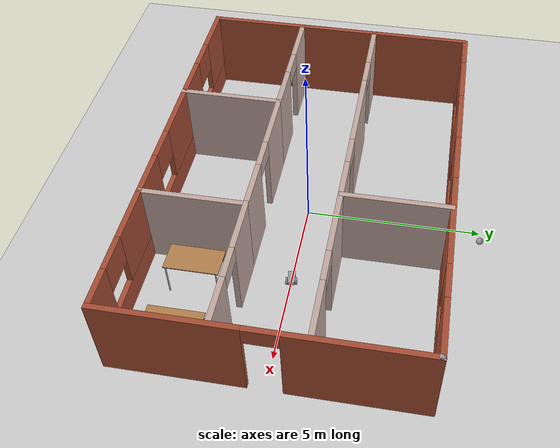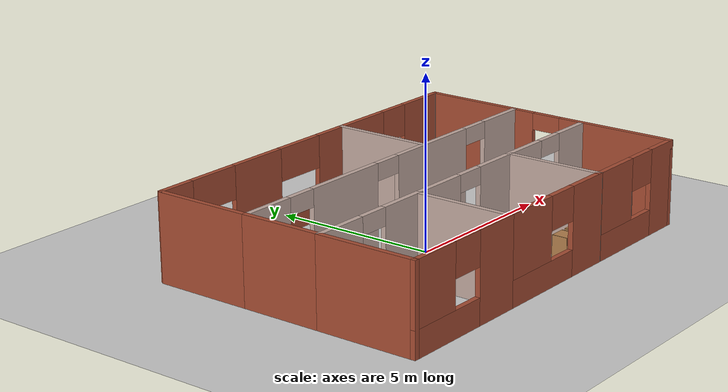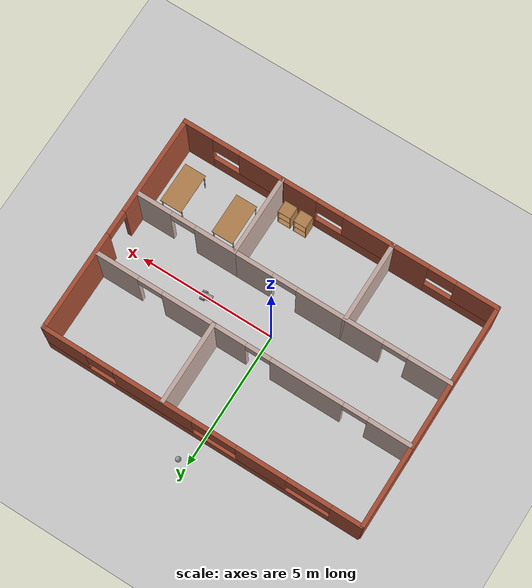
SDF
<sdf version="1.6">
 <world name="default">
  <model name="ground_plane">
   <static>1</static>
   <link name="link">
    <collision name="collision">
     <geometry><plane><normal>0 0 1</normal><size>100 100</size></plane></geometry>
     <surface><friction><ode><mu>100</mu><mu2>50</mu2></ode></friction></surface>
    </collision>
    <visual name="visual">
     <cast_shadows>0</cast_shadows>
     <geometry><plane><normal>0 0 1</normal><size>100 100</size></plane></geometry>
     <material>
      <script><uri>file://media/materials/scripts/gazebo.material</uri><name>Gazebo/Grey</name></script>
     </material>
    </visual>
   </link>
  </model>
  <model name="building1">
   <link name="Wall_0">
    <pose>5.83622 -0.00604 0 0 0 -1.5708</pose>
    <visual name="Wall_0_Visual_0">
     <pose>-2.28969 0 1.25 0 -0 0</pose>
     <geometry><box><size>3.67061 0.15 2.5</size></box></geometry>
     <material>
      <script><uri>file://media/materials/scripts/gazebo.material</uri><name>Gazebo/Bricks</name></script>
      <ambient>1 1 1 1</ambient>
     </material>
     <meta><layer>0</layer></meta>
    </visual>
    <collision name="Wall_0_Collision_0">
     <geometry><box><size>3.67061 0.15 2.5</size></box></geometry>
     <pose>-2.28969 0 1.25 0 -0 0</pose>
    </collision>
    <visual name="Wall_0_Visual_1">
     <pose>2.28531 0 1.25 0 -0 0</pose>
     <geometry><box><size>3.67939 0.15 2.5</size></box></geometry>
     <material>
      <script><uri>file://media/materials/scripts/gazebo.material</uri><name>Gazebo/Bricks</name></script>
      <ambient>1 1 1 1</ambient>
     </material>
     <meta><layer>0</layer></meta>
    </visual>
    <collision name="Wall_0_Collision_1">
     <geometry><box><size>3.67939 0.15 2.5</size></box></geometry>
     <pose>2.28531 0 1.25 0 -0 0</pose>
    </collision>
    <visual name="Wall_0_Visual_2">
     <pose>-0.004386 0 2.25 0 -0 0</pose>
     <geometry><box><size>0.9 0.15 0.5</size></box></geometry>
     <material>
      <script><uri>file://media/materials/scripts/gazebo.material</uri><name>Gazebo/Bricks</name></script>
      <ambient>1 1 1 1</ambient>
     </material>
     <meta><layer>0</layer></meta>
    </visual>
    <collision name="Wall_0_Collision_2">
     <geometry><box><size>0.9 0.15 0.5</size></box></geometry>
     <pose>-0.004386 0 2.25 0 -0 0</pose>
    </collision>
   </link>
   <link name="Wall_11">
    <pose>-3.91122 -4.05604 0 0 -0 3.14159</pose>
    <visual name="Wall_11_Visual_0">
     <pose>-1.29336 0 1.25 0 -0 0</pose>
     <geometry><box><size>1.41328 0.15 2.5</size></box></geometry>
     <material>
      <script><uri>file://media/materials/scripts/gazebo.material</uri><name>Gazebo/Bricks</name></script>
      <ambient>1 1 1 1</ambient>
     </material>
     <meta><layer>0</layer></meta>
    </visual>
    <collision name="Wall_11_Collision_0">
     <geometry><box><size>1.41328 0.15 2.5</size></box></geometry>
     <pose>-1.29336 0 1.25 0 -0 0</pose>
    </collision>
    <visual name="Wall_11_Visual_1">
     <pose>0.706639 0 0.375 0 -0 0</pose>
     <geometry><box><size>2.58672 0.15 0.75</size></box></geometry>
     <material>
      <script><uri>file://media/materials/scripts/gazebo.material</uri><name>Gazebo/Bricks</name></script>
      <ambient>1 1 1 1</ambient>
     </material>
     <meta><layer>0</layer></meta>
    </visual>
    <collision name="Wall_11_Collision_1">
     <geometry><box><size>2.58672 0.15 0.75</size></box></geometry>
     <pose>0.706639 0 0.375 0 -0 0</pose>
    </collision>
    <visual name="Wall_11_Visual_2">
     <pose>1.20664 0 1.625 0 -0 0</pose>
     <geometry><box><size>1.58672 0.15 1.75</size></box></geometry>
     <material>
      <script><uri>file://media/materials/scripts/gazebo.material</uri><name>Gazebo/Bricks</name></script>
      <ambient>1 1 1 1</ambient>
     </material>
     <meta><layer>0</layer></meta>
    </visual>
    <collision name="Wall_11_Collision_2">
     <geometry><box><size>1.58672 0.15 1.75</size></box></geometry>
     <pose>1.20664 0 1.625 0 -0 0</pose>
    </collision>
    <visual name="Wall_11_Visual_3">
     <pose>-0.086722 0 2.025 0 -0 0</pose>
     <geometry><box><size>1 0.15 0.95</size></box></geometry>
     <material>
      <script><uri>file://media/materials/scripts/gazebo.material</uri><name>Gazebo/Bricks</name></script>
      <ambient>1 1 1 1</ambient>
     </material>
     <meta><layer>0</layer></meta>
    </visual>
    <collision name="Wall_11_Collision_3">
     <geometry><box><size>1 0.15 0.95</size></box></geometry>
     <pose>-0.086722 0 2.025 0 -0 0</pose>
    </collision>
   </link>
   <link name="Wall_12">
    <collision name="Wall_12_Collision">
     <geometry><box><size>3 0.15 2.5</size></box></geometry>
     <pose>0 0 1.25 0 -0 0</pose>
    </collision>
    <visual name="Wall_12_Visual">
     <pose>0 0 1.25 0 -0 0</pose>
     <geometry><box><size>3 0.15 2.5</size></box></geometry>
     <material>
      <script><uri>file://media/materials/scripts/gazebo.material</uri><name>Gazebo/Bricks</name></script>
      <ambient>1 1 1 1</ambient>
     </material>
     <meta><layer>0</layer></meta>
    </visual>
    <pose>-5.83622 -2.63104 0 0 -0 1.5708</pose>
   </link>
   <link name="Wall_13">
    <pose>-3.91122 -1.20604 0 0 -0 0</pose>
    <visual name="Wall_13_Visual_0">
     <pose>-1.18164 0 1.25 0 -0 0</pose>
     <geometry><box><size>1.63672 0.15 2.5</size></box></geometry>
     <material>
      <script><uri>file://media/materials/scripts/gazebo.material</uri><name>Gazebo/Grey</name></script>
      <ambient>0.760784 0.662745 0.627451 1</ambient>
     </material>
     <meta><layer>0</layer></meta>
    </visual>
    <collision name="Wall_13_Collision_0">
     <geometry><box><size>1.63672 0.15 2.5</size></box></geometry>
     <pose>-1.18164 0 1.25 0 -0 0</pose>
    </collision>
    <visual name="Wall_13_Visual_1">
     <pose>1.26836 0 1.25 0 -0 0</pose>
     <geometry><box><size>1.46328 0.15 2.5</size></box></geometry>
     <material>
      <script><uri>file://media/materials/scripts/gazebo.material</uri><name>Gazebo/Grey</name></script>
      <ambient>0.760784 0.662745 0.627451 1</ambient>
     </material>
     <meta><layer>0</layer></meta>
    </visual>
    <collision name="Wall_13_Collision_1">
     <geometry><box><size>1.46328 0.15 2.5</size></box></geometry>
     <pose>1.26836 0 1.25 0 -0 0</pose>
    </collision>
    <visual name="Wall_13_Visual_2">
     <pose>0.086722 0 2.25 0 -0 0</pose>
     <geometry><box><size>0.9 0.15 0.5</size></box></geometry>
     <material>
      <script><uri>file://media/materials/scripts/gazebo.material</uri><name>Gazebo/Grey</name></script>
      <ambient>0.760784 0.662745 0.627451 1</ambient>
     </material>
     <meta><layer>0</layer></meta>
    </visual>
    <collision name="Wall_13_Collision_2">
     <geometry><box><size>0.9 0.15 0.5</size></box></geometry>
     <pose>0.086722 0 2.25 0 -0 0</pose>
    </collision>
   </link>
   <link name="Wall_15">
    <collision name="Wall_15_Collision">
     <geometry><box><size>2.5 0.15 2.5</size></box></geometry>
     <pose>0 0 1.25 0 -0 0</pose>
    </collision>
    <visual name="Wall_15_Visual">
     <pose>0 0 1.25 0 -0 0</pose>
     <geometry><box><size>2.5 0.15 2.5</size></box></geometry>
     <material>
      <script><uri>file://media/materials/scripts/gazebo.material</uri><name>Gazebo/Bricks</name></script>
      <ambient>1 1 1 1</ambient>
     </material>
     <meta><layer>0</layer></meta>
    </visual>
    <pose>-5.83622 -0.03104 0 0 -0 1.5708</pose>
   </link>
   <link name="Wall_16">
    <pose>-0.036216 1.14396 0 0 -0 0</pose>
    <visual name="Wall_16_Visual_0">
     <pose>-5.04789 0 1.25 0 -0 0</pose>
     <geometry><box><size>1.65421 0.15 2.5</size></box></geometry>
     <material>
      <script><uri>file://media/materials/scripts/gazebo.material</uri><name>Gazebo/Grey</name></script>
      <ambient>0.760784 0.662745 0.627451 1</ambient>
     </material>
     <meta><layer>0</layer></meta>
    </visual>
    <collision name="Wall_16_Collision_0">
     <geometry><box><size>1.65421 0.15 2.5</size></box></geometry>
     <pose>-5.04789 0 1.25 0 -0 0</pose>
    </collision>
    <visual name="Wall_16_Visual_1">
     <pose>-1.99555 0 1.25 0 -0 0</pose>
     <geometry><box><size>2.65048 0.15 2.5</size></box></geometry>
     <material>
      <script><uri>file://media/materials/scripts/gazebo.material</uri><name>Gazebo/Grey</name></script>
      <ambient>0.760784 0.662745 0.627451 1</ambient>
     </material>
     <meta><layer>0</layer></meta>
    </visual>
    <collision name="Wall_16_Collision_1">
     <geometry><box><size>2.65048 0.15 2.5</size></box></geometry>
     <pose>-1.99555 0 1.25 0 -0 0</pose>
    </collision>
    <visual name="Wall_16_Visual_2">
     <pose>1.79105 0 1.25 0 -0 0</pose>
     <geometry><box><size>3.12271 0.15 2.5</size></box></geometry>
     <material>
      <script><uri>file://media/materials/scripts/gazebo.material</uri><name>Gazebo/Grey</name></script>
      <ambient>0.760784 0.662745 0.627451 1</ambient>
     </material>
     <meta><layer>0</layer></meta>
    </visual>
    <collision name="Wall_16_Collision_2">
     <geometry><box><size>3.12271 0.15 2.5</size></box></geometry>
     <pose>1.79105 0 1.25 0 -0 0</pose>
    </collision>
    <visual name="Wall_16_Visual_3">
     <pose>5.0637 0 1.25 0 -0 0</pose>
     <geometry><box><size>1.62259 0.15 2.5</size></box></geometry>
     <material>
      <script><uri>file://media/materials/scripts/gazebo.material</uri><name>Gazebo/Grey</name></script>
      <ambient>0.760784 0.662745 0.627451 1</ambient>
     </material>
     <meta><layer>0</layer></meta>
    </visual>
    <collision name="Wall_16_Collision_3">
     <geometry><box><size>1.62259 0.15 2.5</size></box></geometry>
     <pose>5.0637 0 1.25 0 -0 0</pose>
    </collision>
    <visual name="Wall_16_Visual_4">
     <pose>-3.77079 0 2.25 0 -0 0</pose>
     <geometry><box><size>0.9 0.15 0.5</size></box></geometry>
     <material>
      <script><uri>file://media/materials/scripts/gazebo.material</uri><name>Gazebo/Grey</name></script>
      <ambient>0.760784 0.662745 0.627451 1</ambient>
     </material>
     <meta><layer>0</layer></meta>
    </visual>
    <collision name="Wall_16_Collision_4">
     <geometry><box><size>0.9 0.15 0.5</size></box></geometry>
     <pose>-3.77079 0 2.25 0 -0 0</pose>
    </collision>
    <visual name="Wall_16_Visual_5">
     <pose>-0.220305 0 2.25 0 -0 0</pose>
     <geometry><box><size>0.9 0.15 0.5</size></box></geometry>
     <material>
      <script><uri>file://media/materials/scripts/gazebo.material</uri><name>Gazebo/Grey</name></script>
      <ambient>0.760784 0.662745 0.627451 1</ambient>
     </material>
     <meta><layer>0</layer></meta>
    </visual>
    <collision name="Wall_16_Collision_5">
     <geometry><box><size>0.9 0.15 0.5</size></box></geometry>
     <pose>-0.220305 0 2.25 0 -0 0</pose>
    </collision>
    <visual name="Wall_16_Visual_6">
     <pose>3.80241 0 2.25 0 -0 0</pose>
     <geometry><box><size>0.9 0.15 0.5</size></box></geometry>
     <material>
      <script><uri>file://media/materials/scripts/gazebo.material</uri><name>Gazebo/Grey</name></script>
      <ambient>0.760784 0.662745 0.627451 1</ambient>
     </material>
     <meta><layer>0</layer></meta>
    </visual>
    <collision name="Wall_16_Collision_6">
     <geometry><box><size>0.9 0.15 0.5</size></box></geometry>
     <pose>3.80241 0 2.25 0 -0 0</pose>
    </collision>
   </link>
   <link name="Wall_22">
    <collision name="Wall_22_Collision">
     <geometry><box><size>3 0.15 2.5</size></box></geometry>
     <pose>0 0 1.25 0 -0 0</pose>
    </collision>
    <visual name="Wall_22_Visual">
     <pose>0 0 1.25 0 -0 0</pose>
     <geometry><box><size>3 0.15 2.5</size></box></geometry>
     <material>
      <script><uri>file://media/materials/scripts/gazebo.material</uri><name>Gazebo/Bricks</name></script>
      <ambient>1 1 1 1</ambient>
     </material>
     <meta><layer>0</layer></meta>
    </visual>
    <pose>-5.83622 2.56896 0 0 -0 1.5708</pose>
   </link>
   <link name="Wall_24">
    <collision name="Wall_24_Collision">
     <geometry><box><size>0.15 0.15 2.5</size></box></geometry>
     <pose>0 0 1.25 0 -0 0</pose>
    </collision>
    <visual name="Wall_24_Visual">
     <pose>0 0 1.25 0 -0 0</pose>
     <geometry><box><size>0.15 0.15 2.5</size></box></geometry>
     <material>
      <script><uri>file://media/materials/scripts/gazebo.material</uri><name>Gazebo/Grey</name></script>
      <ambient>1 1 1 1</ambient>
     </material>
     <meta><layer>0</layer></meta>
    </visual>
    <pose>5.83622 4.04396 0 0 -0 0</pose>
   </link>
   <link name="Wall_28">
    <pose>-0.000871 4.05604 0 0 -0 0</pose>
    <visual name="Wall_28_Visual_0">
     <pose>-5.30178 0 1.25 0 -0 0</pose>
     <geometry><box><size>1.14644 0.15 2.5</size></box></geometry>
     <material>
      <script><uri>file://media/materials/scripts/gazebo.material</uri><name>Gazebo/Bricks</name></script>
      <ambient>1 1 1 1</ambient>
     </material>
     <meta><layer>0</layer></meta>
    </visual>
    <collision name="Wall_28_Collision_0">
     <geometry><box><size>1.14644 0.15 2.5</size></box></geometry>
     <pose>-5.30178 0 1.25 0 -0 0</pose>
    </collision>
    <visual name="Wall_28_Visual_1">
     <pose>0.573218 0 0.375 0 -0 0</pose>
     <geometry><box><size>10.6036 0.15 0.75</size></box></geometry>
     <material>
      <script><uri>file://media/materials/scripts/gazebo.material</uri><name>Gazebo/Bricks</name></script>
      <ambient>1 1 1 1</ambient>
     </material>
     <meta><layer>0</layer></meta>
    </visual>
    <collision name="Wall_28_Collision_1">
     <geometry><box><size>10.6036 0.15 0.75</size></box></geometry>
     <pose>0.573218 0 0.375 0 -0 0</pose>
    </collision>
    <visual name="Wall_28_Visual_2">
     <pose>-2.20579 0 1.625 0 -0 0</pose>
     <geometry><box><size>1.84554 0.15 1.75</size></box></geometry>
     <material>
      <script><uri>file://media/materials/scripts/gazebo.material</uri><name>Gazebo/Bricks</name></script>
      <ambient>1 1 1 1</ambient>
     </material>
     <meta><layer>0</layer></meta>
    </visual>
    <collision name="Wall_28_Collision_2">
     <geometry><box><size>1.84554 0.15 1.75</size></box></geometry>
     <pose>-2.20579 0 1.625 0 -0 0</pose>
    </collision>
    <visual name="Wall_28_Visual_3">
     <pose>1.77453 0 1.625 0 -0 0</pose>
     <geometry><box><size>2.91511 0.15 1.75</size></box></geometry>
     <material>
      <script><uri>file://media/materials/scripts/gazebo.material</uri><name>Gazebo/Bricks</name></script>
      <ambient>1 1 1 1</ambient>
     </material>
     <meta><layer>0</layer></meta>
    </visual>
    <collision name="Wall_28_Collision_3">
     <geometry><box><size>2.91511 0.15 1.75</size></box></geometry>
     <pose>1.77453 0 1.625 0 -0 0</pose>
    </collision>
    <visual name="Wall_28_Visual_4">
     <pose>5.05354 0 1.625 0 -0 0</pose>
     <geometry><box><size>1.64292 0.15 1.75</size></box></geometry>
     <material>
      <script><uri>file://media/materials/scripts/gazebo.material</uri><name>Gazebo/Bricks</name></script>
      <ambient>1 1 1 1</ambient>
     </material>
     <meta><layer>0</layer></meta>
    </visual>
    <collision name="Wall_28_Collision_4">
     <geometry><box><size>1.64292 0.15 1.75</size></box></geometry>
     <pose>5.05354 0 1.625 0 -0 0</pose>
    </collision>
    <visual name="Wall_28_Visual_5">
     <pose>-3.92856 0 2.025 0 -0 0</pose>
     <geometry><box><size>1.6 0.15 0.95</size></box></geometry>
     <material>
      <script><uri>file://media/materials/scripts/gazebo.material</uri><name>Gazebo/Bricks</name></script>
      <ambient>1 1 1 1</ambient>
     </material>
     <meta><layer>0</layer></meta>
    </visual>
    <collision name="Wall_28_Collision_5">
     <geometry><box><size>1.6 0.15 0.95</size></box></geometry>
     <pose>-3.92856 0 2.025 0 -0 0</pose>
    </collision>
    <visual name="Wall_28_Visual_6">
     <pose>-0.483021 0 2.025 0 -0 0</pose>
     <geometry><box><size>1.6 0.15 0.95</size></box></geometry>
     <material>
      <script><uri>file://media/materials/scripts/gazebo.material</uri><name>Gazebo/Bricks</name></script>
      <ambient>1 1 1 1</ambient>
     </material>
     <meta><layer>0</layer></meta>
    </visual>
    <collision name="Wall_28_Collision_6">
     <geometry><box><size>1.6 0.15 0.95</size></box></geometry>
     <pose>-0.483021 0 2.025 0 -0 0</pose>
    </collision>
    <visual name="Wall_28_Visual_7">
     <pose>3.73208 0 2.025 0 -0 0</pose>
     <geometry><box><size>1 0.15 0.95</size></box></geometry>
     <material>
      <script><uri>file://media/materials/scripts/gazebo.material</uri><name>Gazebo/Bricks</name></script>
      <ambient>1 1 1 1</ambient>
     </material>
     <meta><layer>0</layer></meta>
    </visual>
    <collision name="Wall_28_Collision_7">
     <geometry><box><size>1 0.15 0.95</size></box></geometry>
     <pose>3.73208 0 2.025 0 -0 0</pose>
    </collision>
   </link>
   <link name="Wall_3">
    <pose>3.97243 -4.05604 0 0 -0 3.14159</pose>
    <visual name="Wall_3_Visual_0">
     <pose>-1.35239 0 1.25 0 -0 0</pose>
     <geometry><box><size>1.13781 0.15 2.5</size></box></geometry>
     <material>
      <script><uri>file://media/materials/scripts/gazebo.material</uri><name>Gazebo/Bricks</name></script>
      <ambient>1 1 1 1</ambient>
     </material>
     <meta><layer>0</layer></meta>
    </visual>
    <collision name="Wall_3_Collision_0">
     <geometry><box><size>1.13781 0.15 2.5</size></box></geometry>
     <pose>-1.35239 0 1.25 0 -0 0</pose>
    </collision>
    <visual name="Wall_3_Visual_1">
     <pose>0.568905 0 0.375 0 -0 0</pose>
     <geometry><box><size>2.70478 0.15 0.75</size></box></geometry>
     <material>
      <script><uri>file://media/materials/scripts/gazebo.material</uri><name>Gazebo/Bricks</name></script>
      <ambient>1 1 1 1</ambient>
     </material>
     <meta><layer>0</layer></meta>
    </visual>
    <collision name="Wall_3_Collision_1">
     <geometry><box><size>2.70478 0.15 0.75</size></box></geometry>
     <pose>0.568905 0 0.375 0 -0 0</pose>
    </collision>
    <visual name="Wall_3_Visual_2">
     <pose>1.0689 0 1.625 0 -0 0</pose>
     <geometry><box><size>1.70478 0.15 1.75</size></box></geometry>
     <material>
      <script><uri>file://media/materials/scripts/gazebo.material</uri><name>Gazebo/Bricks</name></script>
      <ambient>1 1 1 1</ambient>
     </material>
     <meta><layer>0</layer></meta>
    </visual>
    <collision name="Wall_3_Collision_2">
     <geometry><box><size>1.70478 0.15 1.75</size></box></geometry>
     <pose>1.0689 0 1.625 0 -0 0</pose>
    </collision>
    <visual name="Wall_3_Visual_3">
     <pose>-0.283484 0 2.025 0 -0 0</pose>
     <geometry><box><size>1 0.15 0.95</size></box></geometry>
     <material>
      <script><uri>file://media/materials/scripts/gazebo.material</uri><name>Gazebo/Bricks</name></script>
      <ambient>1 1 1 1</ambient>
     </material>
     <meta><layer>0</layer></meta>
    </visual>
    <collision name="Wall_3_Collision_3">
     <geometry><box><size>1 0.15 0.95</size></box></geometry>
     <pose>-0.283484 0 2.025 0 -0 0</pose>
    </collision>
   </link>
   <link name="Wall_30">
    <collision name="Wall_30_Collision">
     <geometry><box><size>3 0.15 2.5</size></box></geometry>
     <pose>0 0 1.25 0 -0 0</pose>
    </collision>
    <visual name="Wall_30_Visual">
     <pose>0 0 1.25 0 -0 0</pose>
     <geometry><box><size>3 0.15 2.5</size></box></geometry>
     <material>
      <script><uri>file://media/materials/scripts/gazebo.material</uri><name>Gazebo/Grey</name></script>
      <ambient>0.760784 0.662745 0.627451 1</ambient>
     </material>
     <meta><layer>0</layer></meta>
    </visual>
    <pose>1.40504 2.59518 0 0 -0 1.5708</pose>
   </link>
   <link name="Wall_4">
    <collision name="Wall_4_Collision">
     <geometry><box><size>3 0.15 2.5</size></box></geometry>
     <pose>0 0 1.25 0 -0 0</pose>
    </collision>
    <visual name="Wall_4_Visual">
     <pose>0 0 1.25 0 -0 0</pose>
     <geometry><box><size>3 0.15 2.5</size></box></geometry>
     <material>
      <script><uri>file://media/materials/scripts/gazebo.material</uri><name>Gazebo/Grey</name></script>
      <ambient>0.760784 0.662745 0.627451 1</ambient>
     </material>
     <meta><layer>0</layer></meta>
    </visual>
    <pose>2.14363 -2.63104 0 0 -0 1.5708</pose>
   </link>
   <link name="Wall_5">
    <pose>3.91996 -1.20604 0 0 -0 0</pose>
    <visual name="Wall_5_Visual_0">
     <pose>-1.08763 0 1.25 0 -0 0</pose>
     <geometry><box><size>1.56239 0.15 2.5</size></box></geometry>
     <material>
      <script><uri>file://media/materials/scripts/gazebo.material</uri><name>Gazebo/Grey</name></script>
      <ambient>0.760784 0.662745 0.627451 1</ambient>
     </material>
     <meta><layer>0</layer></meta>
    </visual>
    <collision name="Wall_5_Collision_0">
     <geometry><box><size>1.56239 0.15 2.5</size></box></geometry>
     <pose>-1.08763 0 1.25 0 -0 0</pose>
    </collision>
    <visual name="Wall_5_Visual_1">
     <pose>1.23119 0 1.25 0 -0 0</pose>
     <geometry><box><size>1.27526 0.15 2.5</size></box></geometry>
     <material>
      <script><uri>file://media/materials/scripts/gazebo.material</uri><name>Gazebo/Grey</name></script>
      <ambient>0.760784 0.662745 0.627451 1</ambient>
     </material>
     <meta><layer>0</layer></meta>
    </visual>
    <collision name="Wall_5_Collision_1">
     <geometry><box><size>1.27526 0.15 2.5</size></box></geometry>
     <pose>1.23119 0 1.25 0 -0 0</pose>
    </collision>
    <visual name="Wall_5_Visual_2">
     <pose>0.143564 0 2.25 0 -0 0</pose>
     <geometry><box><size>0.9 0.15 0.5</size></box></geometry>
     <material>
      <script><uri>file://media/materials/scripts/gazebo.material</uri><name>Gazebo/Grey</name></script>
      <ambient>0.760784 0.662745 0.627451 1</ambient>
     </material>
     <meta><layer>0</layer></meta>
    </visual>
    <collision name="Wall_5_Collision_2">
     <geometry><box><size>0.9 0.15 0.5</size></box></geometry>
     <pose>0.143564 0 2.25 0 -0 0</pose>
    </collision>
   </link>
   <link name="Wall_7">
    <pose>0.06996 -4.05604 0 0 -0 3.14159</pose>
    <visual name="Wall_7_Visual_0">
     <pose>-1.44093 0 1.25 0 -0 0</pose>
     <geometry><box><size>1.38048 0.15 2.5</size></box></geometry>
     <material>
      <script><uri>file://media/materials/scripts/gazebo.material</uri><name>Gazebo/Bricks</name></script>
      <ambient>1 1 1 1</ambient>
     </material>
     <meta><layer>0</layer></meta>
    </visual>
    <collision name="Wall_7_Collision_0">
     <geometry><box><size>1.38048 0.15 2.5</size></box></geometry>
     <pose>-1.44093 0 1.25 0 -0 0</pose>
    </collision>
    <visual name="Wall_7_Visual_1">
     <pose>0.690242 0 0.375 0 -0 0</pose>
     <geometry><box><size>2.88187 0.15 0.75</size></box></geometry>
     <material>
      <script><uri>file://media/materials/scripts/gazebo.material</uri><name>Gazebo/Bricks</name></script>
      <ambient>1 1 1 1</ambient>
     </material>
     <meta><layer>0</layer></meta>
    </visual>
    <collision name="Wall_7_Collision_1">
     <geometry><box><size>2.88187 0.15 0.75</size></box></geometry>
     <pose>0.690242 0 0.375 0 -0 0</pose>
    </collision>
    <visual name="Wall_7_Visual_2">
     <pose>1.19024 0 1.625 0 -0 0</pose>
     <geometry><box><size>1.88187 0.15 1.75</size></box></geometry>
     <material>
      <script><uri>file://media/materials/scripts/gazebo.material</uri><name>Gazebo/Bricks</name></script>
      <ambient>1 1 1 1</ambient>
     </material>
     <meta><layer>0</layer></meta>
    </visual>
    <collision name="Wall_7_Collision_2">
     <geometry><box><size>1.88187 0.15 1.75</size></box></geometry>
     <pose>1.19024 0 1.625 0 -0 0</pose>
    </collision>
    <visual name="Wall_7_Visual_3">
     <pose>-0.250691 0 2.025 0 -0 0</pose>
     <geometry><box><size>1 0.15 0.95</size></box></geometry>
     <material>
      <script><uri>file://media/materials/scripts/gazebo.material</uri><name>Gazebo/Bricks</name></script>
      <ambient>1 1 1 1</ambient>
     </material>
     <meta><layer>0</layer></meta>
    </visual>
    <collision name="Wall_7_Collision_3">
     <geometry><box><size>1 0.15 0.95</size></box></geometry>
     <pose>-0.250691 0 2.025 0 -0 0</pose>
    </collision>
   </link>
   <link name="Wall_8">
    <collision name="Wall_8_Collision">
     <geometry><box><size>3 0.15 2.5</size></box></geometry>
     <pose>0 0 1.25 0 -0 0</pose>
    </collision>
    <visual name="Wall_8_Visual">
     <pose>0 0 1.25 0 -0 0</pose>
     <geometry><box><size>3 0.15 2.5</size></box></geometry>
     <material>
      <script><uri>file://media/materials/scripts/gazebo.material</uri><name>Gazebo/Grey</name></script>
      <ambient>0.760784 0.662745 0.627451 1</ambient>
     </material>
     <meta><layer>0</layer></meta>
    </visual>
    <pose>-1.98622 -2.63104 0 0 -0 1.5708</pose>
   </link>
   <link name="Wall_9">
    <pose>0.06996 -1.20604 0 0 -0 0</pose>
    <visual name="Wall_9_Visual_0">
     <pose>-1.20022 0 1.25 0 -0 0</pose>
     <geometry><box><size>1.86191 0.15 2.5</size></box></geometry>
     <material>
      <script><uri>file://media/materials/scripts/gazebo.material</uri><name>Gazebo/Grey</name></script>
      <ambient>0.760784 0.662745 0.627451 1</ambient>
     </material>
     <meta><layer>0</layer></meta>
    </visual>
    <collision name="Wall_9_Collision_0">
     <geometry><box><size>1.86191 0.15 2.5</size></box></geometry>
     <pose>-1.20022 0 1.25 0 -0 0</pose>
    </collision>
    <visual name="Wall_9_Visual_1">
     <pose>1.38095 0 1.25 0 -0 0</pose>
     <geometry><box><size>1.50045 0.15 2.5</size></box></geometry>
     <material>
      <script><uri>file://media/materials/scripts/gazebo.material</uri><name>Gazebo/Grey</name></script>
      <ambient>0.760784 0.662745 0.627451 1</ambient>
     </material>
     <meta><layer>0</layer></meta>
    </visual>
    <collision name="Wall_9_Collision_1">
     <geometry><box><size>1.50045 0.15 2.5</size></box></geometry>
     <pose>1.38095 0 1.25 0 -0 0</pose>
    </collision>
    <visual name="Wall_9_Visual_2">
     <pose>0.180731 0 2.25 0 -0 0</pose>
     <geometry><box><size>0.9 0.15 0.5</size></box></geometry>
     <material>
      <script><uri>file://media/materials/scripts/gazebo.material</uri><name>Gazebo/Grey</name></script>
      <ambient>0.760784 0.662745 0.627451 1</ambient>
     </material>
     <meta><layer>0</layer></meta>
    </visual>
    <collision name="Wall_9_Collision_2">
     <geometry><box><size>0.9 0.15 0.5</size></box></geometry>
     <pose>0.180731 0 2.25 0 -0 0</pose>
    </collision>
   </link>
   <static>1</static>
  </model>
  <model name="table_clone_clone">
   <static>1</static>
   <link name="link">
    <collision name="surface">
     <pose>0 0 1 0 -0 0</pose>
     <geometry><box><size>1.5 0.8 0.03</size></box></geometry>
     <surface><friction><ode><mu>0.6</mu><mu2>0.6</mu2></ode></friction></surface>
    </collision>
    <visual name="visual1">
     <pose>0 0 1 0 -0 0</pose>
     <geometry><box><size>1.5 0.8 0.03</size></box></geometry>
     <material>
      <script><uri>file://media/materials/scripts/gazebo.material</uri><name>Gazebo/Wood</name></script>
     </material>
    </visual>
    <collision name="front_left_leg">
     <pose>0.68 0.38 0.5 0 -0 0</pose>
     <geometry><cylinder><radius>0.02</radius><length>1</length></cylinder></geometry>
    </collision>
    <visual name="front_left_leg">
     <pose>0.68 0.38 0.5 0 -0 0</pose>
     <geometry><cylinder><radius>0.02</radius><length>1</length></cylinder></geometry>
     <material>
      <script><uri>file://media/materials/scripts/gazebo.material</uri><name>Gazebo/Grey</name></script>
     </material>
    </visual>
    <collision name="front_right_leg">
     <pose>0.68 -0.38 0.5 0 -0 0</pose>
     <geometry><cylinder><radius>0.02</radius><length>1</length></cylinder></geometry>
    </collision>
    <visual name="front_right_leg">
     <pose>0.68 -0.38 0.5 0 -0 0</pose>
     <geometry><cylinder><radius>0.02</radius><length>1</length></cylinder></geometry>
     <material>
      <script><uri>file://media/materials/scripts/gazebo.material</uri><name>Gazebo/Grey</name></script>
     </material>
    </visual>
    <collision name="back_right_leg">
     <pose>-0.68 -0.38 0.5 0 -0 0</pose>
     <geometry><cylinder><radius>0.02</radius><length>1</length></cylinder></geometry>
    </collision>
    <visual name="back_right_leg">
     <pose>-0.68 -0.38 0.5 0 -0 0</pose>
     <geometry><cylinder><radius>0.02</radius><length>1</length></cylinder></geometry>
     <material>
      <script><uri>file://media/materials/scripts/gazebo.material</uri><name>Gazebo/Grey</name></script>
     </material>
    </visual>
    <collision name="back_left_leg">
     <pose>-0.68 0.38 0.5 0 -0 0</pose>
     <geometry><cylinder><radius>0.02</radius><length>1</length></cylinder></geometry>
    </collision>
    <visual name="back_left_leg">
     <pose>-0.68 0.38 0.5 0 -0 0</pose>
     <geometry><cylinder><radius>0.02</radius><length>1</length></cylinder></geometry>
     <material>
      <script><uri>file://media/materials/scripts/gazebo.material</uri><name>Gazebo/Grey</name></script>
     </material>
    </visual>
   </link>
   <pose>3 -2.5 0 0 -0 1.5707</pose>
  </model>
  <model name="table_clone_clone_0">
   <static>1</static>
   <link name="link">
    <collision name="surface">
     <pose>0 0 1 0 -0 0</pose>
     <geometry><box><size>1.5 0.8 0.03</size></box></geometry>
     <surface><friction><ode><mu>0.6</mu><mu2>0.6</mu2></ode></friction></surface>
    </collision>
    <visual name="visual1">
     <pose>0 0 1 0 -0 0</pose>
     <geometry><box><size>1.5 0.8 0.03</size></box></geometry>
     <material>
      <script><uri>file://media/materials/scripts/gazebo.material</uri><name>Gazebo/Wood</name></script>
     </material>
    </visual>
    <collision name="front_left_leg">
     <pose>0.68 0.38 0.5 0 -0 0</pose>
     <geometry><cylinder><radius>0.02</radius><length>1</length></cylinder></geometry>
    </collision>
    <visual name="front_left_leg">
     <pose>0.68 0.38 0.5 0 -0 0</pose>
     <geometry><cylinder><radius>0.02</radius><length>1</length></cylinder></geometry>
     <material>
      <script><uri>file://media/materials/scripts/gazebo.material</uri><name>Gazebo/Grey</name></script>
     </material>
    </visual>
    <collision name="front_right_leg">
     <pose>0.68 -0.38 0.5 0 -0 0</pose>
     <geometry><cylinder><radius>0.02</radius><length>1</length></cylinder></geometry>
    </collision>
    <visual name="front_right_leg">
     <pose>0.68 -0.38 0.5 0 -0 0</pose>
     <geometry><cylinder><radius>0.02</radius><length>1</length></cylinder></geometry>
     <material>
      <script><uri>file://media/materials/scripts/gazebo.material</uri><name>Gazebo/Grey</name></script>
     </material>
    </visual>
    <collision name="back_right_leg">
     <pose>-0.68 -0.38 0.5 0 -0 0</pose>
     <geometry><cylinder><radius>0.02</radius><length>1</length></cylinder></geometry>
    </collision>
    <visual name="back_right_leg">
     <pose>-0.68 -0.38 0.5 0 -0 0</pose>
     <geometry><cylinder><radius>0.02</radius><length>1</length></cylinder></geometry>
     <material>
      <script><uri>file://media/materials/scripts/gazebo.material</uri><name>Gazebo/Grey</name></script>
     </material>
    </visual>
    <collision name="back_left_leg">
     <pose>-0.68 0.38 0.5 0 -0 0</pose>
     <geometry><cylinder><radius>0.02</radius><length>1</length></cylinder></geometry>
    </collision>
    <visual name="back_left_leg">
     <pose>-0.68 0.38 0.5 0 -0 0</pose>
     <geometry><cylinder><radius>0.02</radius><length>1</length></cylinder></geometry>
     <material>
      <script><uri>file://media/materials/scripts/gazebo.material</uri><name>Gazebo/Grey</name></script>
     </material>
    </visual>
   </link>
   <pose>5 -2.5 0 0 -0 1.5707</pose>
  </model>
  <model name="cabinet_clone_clone">
   <static>1</static>
   <link name="cabinet_bottom_plate">
    <inertial>
     <pose>0 0 -1 0 -0 0</pose>
     <inertia><ixx>2.05</ixx><ixy>0</ixy><ixz>0</ixz><iyy>2.05</iyy><iyz>0</iyz><izz>2.05</izz></inertia>
     <mass>25</mass>
    </inertial>
    <collision name="cabinet_bottom_plate_geom">
     <pose>0 0 0.01 0 -0 0</pose>
     <geometry><box><size>0.45 0.45 0.02</size></box></geometry>
    </collision>
    <visual name="cabinet_bottom_plate_geom_visual">
     <pose>0 0 0.01 0 -0 0</pose>
     <geometry><box><size>0.45 0.45 0.02</size></box></geometry>
     <material>
      <script><uri>file://media/materials/scripts/gazebo.material</uri><name>Gazebo/Wood</name></script>
     </material>
    </visual>
    <collision name="cabinet_bottom_plate_geom_cabinet_back_plate">
     <pose>0.235 0 0.51 0 -0 0</pose>
     <geometry><box><size>0.02 0.45 1.02</size></box></geometry>
    </collision>
    <visual name="cabinet_bottom_plate_geom_cabinet_back_plate_visual">
     <pose>0.235 0 0.51 0 -0 0</pose>
     <geometry><box><size>0.02 0.45 1.02</size></box></geometry>
     <material>
      <script><uri>file://media/materials/scripts/gazebo.material</uri><name>Gazebo/Wood</name></script>
     </material>
    </visual>
    <collision name="cabinet_bottom_plate_geom_cabinet_left_plate">
     <pose>0 0.235 0.51 0 -0 0</pose>
     <geometry><box><size>0.45 0.02 1.02</size></box></geometry>
    </collision>
    <visual name="cabinet_bottom_plate_geom_cabinet_left_plate_visual">
     <pose>0 0.235 0.51 0 -0 0</pose>
     <geometry><box><size>0.45 0.02 1.02</size></box></geometry>
     <material>
      <script><uri>file://media/materials/scripts/gazebo.material</uri><name>Gazebo/Wood</name></script>
     </material>
    </visual>
    <collision name="cabinet_bottom_plate_geom_cabinet_middle_plate">
     <pose>0 0 0.51 0 -0 0</pose>
     <geometry><box><size>0.45 0.45 0.02</size></box></geometry>
    </collision>
    <visual name="cabinet_bottom_plate_geom_cabinet_middle_plate_visual">
     <pose>0 0 0.51 0 -0 0</pose>
     <geometry><box><size>0.45 0.45 0.02</size></box></geometry>
     <material>
      <script><uri>file://media/materials/scripts/gazebo.material</uri><name>Gazebo/Wood</name></script>
     </material>
    </visual>
    <collision name="cabinet_bottom_plate_geom_cabinet_right_plate">
     <pose>0 -0.235 0.51 0 -0 0</pose>
     <geometry><box><size>0.45 0.02 1.02</size></box></geometry>
    </collision>
    <visual name="cabinet_bottom_plate_geom_cabinet_right_plate_visual">
     <pose>0 -0.235 0.51 0 -0 0</pose>
     <geometry><box><size>0.45 0.02 1.02</size></box></geometry>
     <material>
      <script><uri>file://media/materials/scripts/gazebo.material</uri><name>Gazebo/Wood</name></script>
     </material>
    </visual>
    <collision name="cabinet_bottom_plate_geom_cabinet_top_plate">
     <pose>0 0 1.01 0 -0 0</pose>
     <geometry><box><size>0.45 0.45 0.02</size></box></geometry>
    </collision>
    <visual name="cabinet_bottom_plate_geom_cabinet_top_plate_visual">
     <pose>0 0 1.01 0 -0 0</pose>
     <geometry><box><size>0.45 0.45 0.02</size></box></geometry>
     <material>
      <script><uri>file://media/materials/scripts/gazebo.material</uri><name>Gazebo/Wood</name></script>
     </material>
    </visual>
   </link>
   <pose>1.7 -3.7 0 0 0 -1.5707</pose>
  </model>
  <model name="cabinet_clone_clone_0">
   <static>1</static>
   <link name="cabinet_bottom_plate">
    <inertial>
     <pose>0 0 -1 0 -0 0</pose>
     <inertia><ixx>2.05</ixx><ixy>0</ixy><ixz>0</ixz><iyy>2.05</iyy><iyz>0</iyz><izz>2.05</izz></inertia>
     <mass>25</mass>
    </inertial>
    <collision name="cabinet_bottom_plate_geom">
     <pose>0 0 0.01 0 -0 0</pose>
     <geometry><box><size>0.45 0.45 0.02</size></box></geometry>
    </collision>
    <visual name="cabinet_bottom_plate_geom_visual">
     <pose>0 0 0.01 0 -0 0</pose>
     <geometry><box><size>0.45 0.45 0.02</size></box></geometry>
     <material>
      <script><uri>file://media/materials/scripts/gazebo.material</uri><name>Gazebo/Wood</name></script>
     </material>
    </visual>
    <collision name="cabinet_bottom_plate_geom_cabinet_back_plate">
     <pose>0.235 0 0.51 0 -0 0</pose>
     <geometry><box><size>0.02 0.45 1.02</size></box></geometry>
    </collision>
    <visual name="cabinet_bottom_plate_geom_cabinet_back_plate_visual">
     <pose>0.235 0 0.51 0 -0 0</pose>
     <geometry><box><size>0.02 0.45 1.02</size></box></geometry>
     <material>
      <script><uri>file://media/materials/scripts/gazebo.material</uri><name>Gazebo/Wood</name></script>
     </material>
    </visual>
    <collision name="cabinet_bottom_plate_geom_cabinet_left_plate">
     <pose>0 0.235 0.51 0 -0 0</pose>
     <geometry><box><size>0.45 0.02 1.02</size></box></geometry>
    </collision>
    <visual name="cabinet_bottom_plate_geom_cabinet_left_plate_visual">
     <pose>0 0.235 0.51 0 -0 0</pose>
     <geometry><box><size>0.45 0.02 1.02</size></box></geometry>
     <material>
      <script><uri>file://media/materials/scripts/gazebo.material</uri><name>Gazebo/Wood</name></script>
     </material>
    </visual>
    <collision name="cabinet_bottom_plate_geom_cabinet_middle_plate">
     <pose>0 0 0.51 0 -0 0</pose>
     <geometry><box><size>0.45 0.45 0.02</size></box></geometry>
    </collision>
    <visual name="cabinet_bottom_plate_geom_cabinet_middle_plate_visual">
     <pose>0 0 0.51 0 -0 0</pose>
     <geometry><box><size>0.45 0.45 0.02</size></box></geometry>
     <material>
      <script><uri>file://media/materials/scripts/gazebo.material</uri><name>Gazebo/Wood</name></script>
     </material>
    </visual>
    <collision name="cabinet_bottom_plate_geom_cabinet_right_plate">
     <pose>0 -0.235 0.51 0 -0 0</pose>
     <geometry><box><size>0.45 0.02 1.02</size></box></geometry>
    </collision>
    <visual name="cabinet_bottom_plate_geom_cabinet_right_plate_visual">
     <pose>0 -0.235 0.51 0 -0 0</pose>
     <geometry><box><size>0.45 0.02 1.02</size></box></geometry>
     <material>
      <script><uri>file://media/materials/scripts/gazebo.material</uri><name>Gazebo/Wood</name></script>
     </material>
    </visual>
    <collision name="cabinet_bottom_plate_geom_cabinet_top_plate">
     <pose>0 0 1.01 0 -0 0</pose>
     <geometry><box><size>0.45 0.45 0.02</size></box></geometry>
    </collision>
    <visual name="cabinet_bottom_plate_geom_cabinet_top_plate_visual">
     <pose>0 0 1.01 0 -0 0</pose>
     <geometry><box><size>0.45 0.45 0.02</size></box></geometry>
     <material>
      <script><uri>file://media/materials/scripts/gazebo.material</uri><name>Gazebo/Wood</name></script>
     </material>
    </visual>
   </link>
   <pose>1.1 -3.7 0 0 0 -1.5707</pose>
  </model>
  <model name="robot">
   <link name="link_0">
    <pose>0 0 0.1 -0 -0 -0</pose>
    <inertial>
     <mass>1</mass>
     <inertia>
      <ixx>0.166667</ixx>
      <ixy>0</ixy>
      <ixz>0</ixz>
      <iyy>0.166667</iyy>
      <iyz>0</iyz>
      <izz>0.166667</izz>
     </inertia>
     <pose>0 0 0.1 0 -0 0</pose>
    </inertial>
    <visual name="caster_visual">
     <pose>-0.15 0 -0.05 0 -0 0</pose>
     <geometry><sphere><radius>0.05</radius></sphere></geometry>
     <material>
      <lighting>1</lighting>
      <script><uri>file://media/materials/scripts/gazebo.material</uri><name>Gazebo/Grey</name></script>
      <shader type="pixel"><normal_map>__default__</normal_map></shader>
      <ambient>0.3 0.3 0.3 1</ambient>
      <diffuse>0.7 0.7 0.7 1</diffuse>
      <specular>0.01 0.01 0.01 1</specular>
      <emissive>0 0 0 1</emissive>
     </material>
    </visual>
    <visual name="visual">
     <geometry><box><size>0.4 0.2 0.1</size></box></geometry>
     <material>
      <lighting>1</lighting>
      <script><uri>file://media/materials/scripts/gazebo.material</uri><name>Gazebo/Grey</name></script>
      <shader type="pixel"><normal_map>__default__</normal_map></shader>
      <ambient>0.3 0.3 0.3 1</ambient>
      <diffuse>0.7 0.7 0.7 1</diffuse>
      <specular>0.01 0.01 0.01 1</specular>
      <emissive>0 0 0 1</emissive>
     </material>
    </visual>
    <collision name="caster_collision">
     <pose>-0.15 0 -0.05 0 -0 0</pose>
     <geometry><sphere><radius>0.05</radius></sphere></geometry>
     <surface>
      <friction>
       <ode><mu>0</mu><mu2>0</mu2><fdir1>0 0 0</fdir1><slip1>1</slip1><slip2>1</slip2></ode>
       <torsional>
        <coefficient>1</coefficient>
        <patch_radius>0</patch_radius>
        <surface_radius>0</surface_radius>
        <use_patch_radius>1</use_patch_radius>
        <ode><slip>0</slip></ode>
       </torsional>
      </friction>
      <bounce><restitution_coefficient>0</restitution_coefficient><threshold>1e+06</threshold></bounce>
      <contact>
       <collide_without_contact>0</collide_without_contact>
       <collide_without_contact_bitmask>1</collide_without_contact_bitmask>
       <collide_bitmask>1</collide_bitmask>
       <ode>
        <soft_cfm>0</soft_cfm>
        <soft_erp>0.2</soft_erp>
        <kp>1e+13</kp>
        <kd>1</kd>
        <max_vel>0.01</max_vel>
        <min_depth>0</min_depth>
       </ode>
       <bullet>
        <split_impulse>1</split_impulse>
        <split_impulse_penetration_threshold>-0.01</split_impulse_penetration_threshold>
        <soft_cfm>0</soft_cfm>
        <soft_erp>0.2</soft_erp>
        <kp>1e+13</kp>
        <kd>1</kd>
       </bullet>
      </contact>
     </surface>
    </collision>
    <collision name="collision">
     <geometry><box><size>0.4 0.2 0.1</size></box></geometry>
     <surface>
      <friction>
       <ode><mu>1</mu><mu2>1</mu2><fdir1>0 0 0</fdir1><slip1>0</slip1><slip2>0</slip2></ode>
       <torsional>
        <coefficient>1</coefficient>
        <patch_radius>0</patch_radius>
        <surface_radius>0</surface_radius>
        <use_patch_radius>1</use_patch_radius>
        <ode><slip>0</slip></ode>
       </torsional>
      </friction>
      <bounce><restitution_coefficient>0</restitution_coefficient><threshold>1e+06</threshold></bounce>
      <contact>
       <collide_without_contact>0</collide_without_contact>
       <collide_without_contact_bitmask>1</collide_without_contact_bitmask>
       <collide_bitmask>1</collide_bitmask>
       <ode>
        <soft_cfm>0</soft_cfm>
        <soft_erp>0.2</soft_erp>
        <kp>1e+13</kp>
        <kd>1</kd>
        <max_vel>0.01</max_vel>
        <min_depth>0</min_depth>
       </ode>
       <bullet>
        <split_impulse>1</split_impulse>
        <split_impulse_penetration_threshold>-0.01</split_impulse_penetration_threshold>
        <soft_cfm>0</soft_cfm>
        <soft_erp>0.2</soft_erp>
        <kp>1e+13</kp>
        <kd>1</kd>
       </bullet>
      </contact>
     </surface>
    </collision>
   </link>
   <link name="link_2">
    <pose>0.1 0.13 0.1 -0.00057 1.5707 1.57013</pose>
    <inertial>
     <mass>1</mass>
     <inertia><ixx>0.145833</ixx><ixy>0</ixy><ixz>0</ixz><iyy>0.145833</iyy><iyz>0</iyz><izz>0.125</izz></inertia>
    </inertial>
    <visual name="visual">
     <geometry><cylinder><radius>0.1</radius><length>0.05</length></cylinder></geometry>
     <material>
      <lighting>1</lighting>
      <script><uri>file://media/materials/scripts/gazebo.material</uri><name>Gazebo/Grey</name></script>
      <shader type="pixel"><normal_map>__default__</normal_map></shader>
      <ambient>0.3 0.3 0.3 1</ambient>
      <diffuse>0.7 0.7 0.7 1</diffuse>
      <specular>0.01 0.01 0.01 1</specular>
      <emissive>0 0 0 1</emissive>
     </material>
    </visual>
    <collision name="collision">
     <geometry><cylinder><radius>0.1</radius><length>0.05</length></cylinder></geometry>
     <surface>
      <friction>
       <ode><mu>1</mu><mu2>1</mu2><fdir1>0 0 0</fdir1><slip1>0</slip1><slip2>0</slip2></ode>
       <torsional>
        <coefficient>1</coefficient>
        <patch_radius>0</patch_radius>
        <surface_radius>0</surface_radius>
        <use_patch_radius>1</use_patch_radius>
        <ode><slip>0</slip></ode>
       </torsional>
      </friction>
      <bounce><restitution_coefficient>0</restitution_coefficient><threshold>1e+06</threshold></bounce>
      <contact>
       <collide_without_contact>0</collide_without_contact>
       <collide_without_contact_bitmask>1</collide_without_contact_bitmask>
       <collide_bitmask>1</collide_bitmask>
       <ode>
        <soft_cfm>0</soft_cfm>
        <soft_erp>0.2</soft_erp>
        <kp>1e+13</kp>
        <kd>1</kd>
        <max_vel>0.01</max_vel>
        <min_depth>0</min_depth>
       </ode>
       <bullet>
        <split_impulse>1</split_impulse>
        <split_impulse_penetration_threshold>-0.01</split_impulse_penetration_threshold>
        <soft_cfm>0</soft_cfm>
        <soft_erp>0.2</soft_erp>
        <kp>1e+13</kp>
        <kd>1</kd>
       </bullet>
      </contact>
     </surface>
    </collision>
   </link>
   <link name="link_3">
    <pose>0.1 -0.13 0.1 -0.00057 1.5707 1.57013</pose>
    <inertial>
     <mass>1</mass>
     <inertia><ixx>0.145833</ixx><ixy>0</ixy><ixz>0</ixz><iyy>0.145833</iyy><iyz>0</iyz><izz>0.125</izz></inertia>
    </inertial>
    <visual name="visual">
     <geometry><cylinder><radius>0.1</radius><length>0.05</length></cylinder></geometry>
     <material>
      <lighting>1</lighting>
      <script><uri>file://media/materials/scripts/gazebo.material</uri><name>Gazebo/Grey</name></script>
      <shader type="pixel"><normal_map>__default__</normal_map></shader>
      <ambient>0.3 0.3 0.3 1</ambient>
      <diffuse>0.7 0.7 0.7 1</diffuse>
      <specular>0.01 0.01 0.01 1</specular>
      <emissive>0 0 0 1</emissive>
     </material>
    </visual>
    <collision name="collision">
     <geometry><cylinder><radius>0.1</radius><length>0.05</length></cylinder></geometry>
     <surface>
      <friction>
       <ode><mu>1</mu><mu2>1</mu2><fdir1>0 0 0</fdir1><slip1>0</slip1><slip2>0</slip2></ode>
       <torsional>
        <coefficient>1</coefficient>
        <patch_radius>0</patch_radius>
        <surface_radius>0</surface_radius>
        <use_patch_radius>1</use_patch_radius>
        <ode><slip>0</slip></ode>
       </torsional>
      </friction>
      <bounce><restitution_coefficient>0</restitution_coefficient><threshold>1e+06</threshold></bounce>
      <contact>
       <collide_without_contact>0</collide_without_contact>
       <collide_without_contact_bitmask>1</collide_without_contact_bitmask>
       <collide_bitmask>1</collide_bitmask>
       <ode>
        <soft_cfm>0</soft_cfm>
        <soft_erp>0.2</soft_erp>
        <kp>1e+13</kp>
        <kd>1</kd>
        <max_vel>0.01</max_vel>
        <min_depth>0</min_depth>
       </ode>
       <bullet>
        <split_impulse>1</split_impulse>
        <split_impulse_penetration_threshold>-0.01</split_impulse_penetration_threshold>
        <soft_cfm>0</soft_cfm>
        <soft_erp>0.2</soft_erp>
        <kp>1e+13</kp>
        <kd>1</kd>
       </bullet>
      </contact>
     </surface>
    </collision>
   </link>
   <joint name="link_0_JOINT_2" type="revolute">
    <parent>link_0</parent>
    <child>link_2</child>
    <pose>0 0 -0.03 0 -0 0</pose>
    <axis>
     <xyz>0 0 -1</xyz>
     <use_parent_model_frame>0</use_parent_model_frame>
     <limit>
      <lower>-1.79769e+308</lower>
      <upper>1.79769e+308</upper>
      <effort>-1</effort>
      <velocity>-1</velocity>
     </limit>
     <dynamics>
      <spring_reference>0</spring_reference>
      <spring_stiffness>0</spring_stiffness>
      <damping>0</damping>
      <friction>0</friction>
     </dynamics>
    </axis>
    <physics>
     <ode><limit><cfm>0</cfm><erp>0.2</erp></limit><suspension><cfm>0</cfm><erp>0.2</erp></suspension></ode>
    </physics>
   </joint>
   <joint name="link_0_JOINT_3" type="revolute">
    <parent>link_0</parent>
    <child>link_3</child>
    <pose>0 0 -0.03 0 -0 0</pose>
    <axis>
     <xyz>0 0 -1</xyz>
     <use_parent_model_frame>0</use_parent_model_frame>
     <limit>
      <lower>-1.79769e+308</lower>
      <upper>1.79769e+308</upper>
      <effort>-1</effort>
      <velocity>-1</velocity>
     </limit>
     <dynamics>
      <spring_reference>0</spring_reference>
      <spring_stiffness>0</spring_stiffness>
      <damping>0</damping>
      <friction>0</friction>
     </dynamics>
    </axis>
    <physics>
     <ode><limit><cfm>0</cfm><erp>0.2</erp></limit><suspension><cfm>0</cfm><erp>0.2</erp></suspension></ode>
    </physics>
   </joint>
   <static>0</static>
   <pose>2.50726 -0.006968 2e-06 -7e-06 -1.3e-05 0.126846</pose>
  </model>
  <model name="my_ball">
   <link name="link_1">
    <inertial>
     <mass>1</mass>
     <inertia><ixx>0.1</ixx><ixy>0</ixy><ixz>0</ixz><iyy>0.1</iyy><iyz>0</iyz><izz>0.1</izz></inertia>
    </inertial>
    <visual name="visual">
     <geometry><sphere><radius>0.1</radius></sphere></geometry>
     <material>
      <lighting>1</lighting>
      <script><uri>file://media/materials/scripts/gazebo.material</uri><name>Gazebo/Grey</name></script>
      <shader type="pixel"><normal_map>__default__</normal_map></shader>
      <ambient>1 1 1 1</ambient>
      <diffuse>1 1 1 1</diffuse>
      <specular>1 1 1 1</specular>
      <emissive>1 1 1 1</emissive>
     </material>
    </visual>
    <collision name="collision">
     <geometry><sphere><radius>0.1</radius></sphere></geometry>
     <surface>
      <friction>
       <ode><mu>1</mu><mu2>1</mu2><fdir1>0 0 0</fdir1><slip1>0</slip1><slip2>0</slip2></ode>
       <torsional>
        <coefficient>1</coefficient>
        <patch_radius>0</patch_radius>
        <surface_radius>0</surface_radius>
        <use_patch_radius>1</use_patch_radius>
        <ode><slip>0</slip></ode>
       </torsional>
      </friction>
      <bounce><restitution_coefficient>0</restitution_coefficient><threshold>1e+06</threshold></bounce>
      <contact>
       <collide_without_contact>0</collide_without_contact>
       <collide_without_contact_bitmask>1</collide_without_contact_bitmask>
       <collide_bitmask>1</collide_bitmask>
       <ode>
        <soft_cfm>0</soft_cfm>
        <soft_erp>0.2</soft_erp>
        <kp>1e+13</kp>
        <kd>1</kd>
        <max_vel>0.01</max_vel>
        <min_depth>0</min_depth>
       </ode>
       <bullet>
        <split_impulse>1</split_impulse>
        <split_impulse_penetration_threshold>-0.01</split_impulse_penetration_threshold>
        <soft_cfm>0</soft_cfm>
        <soft_erp>0.2</soft_erp>
        <kp>1e+13</kp>
        <kd>1</kd>
       </bullet>
      </contact>
     </surface>
    </collision>
   </link>
   <static>0</static>
   <pose>0.343106 5.02032 0.1 0 -0 0</pose>
  </model>
 </world>
</sdf>
